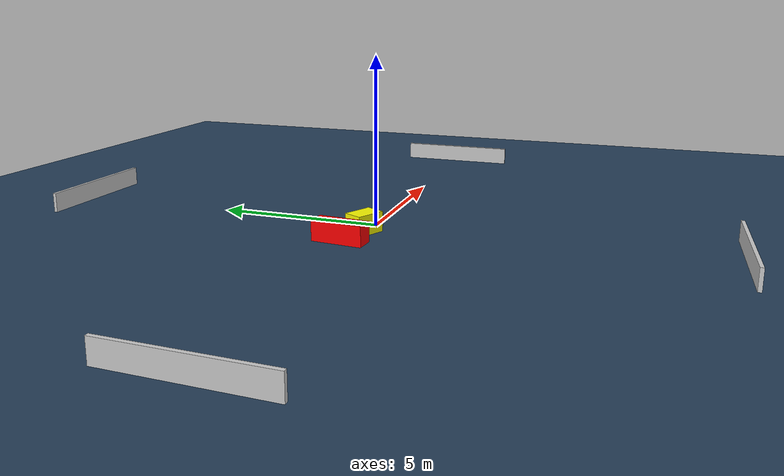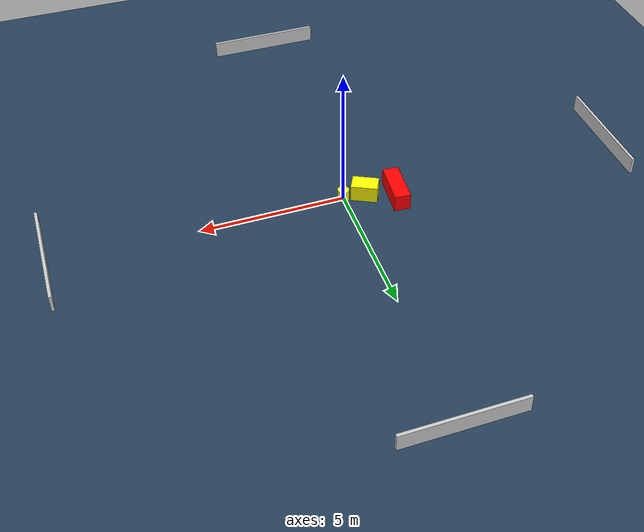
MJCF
<?xml version="1.0" ?>
<mujoco model="generated_environment">
  <option timestep="0.01" integrator="RK4" cone="elliptic"/>
  <default>
    <geom density="1"/>
  </default>
  <asset>
    <texture builtin="gradient" height="3072" name="skybox" rgb1="0.3 0.5 0.7" rgb2="0 0 0" type="skybox" width="512"/>
    <texture builtin="checker" height="300" name="groundplane" rgb1="0.2 0.3 0.4" rgb2="0.1 0.2 0.3" type="2d" width="300"/>
    <material name="groundplane" reflectance="0.2" texrepeat="5 5" texture="groundplane"/>
  </asset>
  <worldbody>
    <light dir="0 0 -1" directional="true" pos="0 0 1.5"/>
    <geom condim="3" friction="0.5 0.005 0.001" material="groundplane" name="floor" pos="0 0 0" size="0 0 0.05" type="plane"/>
    <body name="walls">
      <geom name="wall_1" condim="4" pos="-10.0 0.0 0.3" rgba="0.800000011920929 0.800000011920929 0.800000011920929 1.0" size="0.05 2.0 0.3" type="box"/>
      <geom name="wall_2" condim="4" pos="10.0 0.0 0.3" rgba="0.800000011920929 0.800000011920929 0.800000011920929 1.0" size="0.05 2.0 0.3" type="box"/>
      <geom name="wall_3" condim="4" pos="0.0 -10.0 0.3" rgba="0.800000011920929 0.800000011920929 0.800000011920929 1.0" size="2.0 0.05 0.3" type="box"/>
      <geom name="wall_4" condim="4" pos="0.0 10.0 0.3" rgba="0.800000011920929 0.800000011920929 0.800000011920929 1.0" size="2.0 0.05 0.3" type="box"/>
    </body>
    <body name="robot">
      <joint name="joint_x" type="slide" pos="0 0 0" axis="1 0 0"/>
      <joint name="joint_y" type="slide" pos="0 0 0" axis="0 1 0"/>
      <geom name="robot" type="cylinder" pos="0.0 0.0 0.2" size="0.2 0.2 0.0" mass="5.0" friction="1.0 0.005 0.0001" condim="4" rgba="1.0 1.0 0.0 1.0"/>
    </body>
    <body name="obstacle_1_movable">
      <geom name="obstacle_1_movable" condim="4" pos="-0.7375135475200274 0.10500523255253442 0.3" euler="0 0 333.4228893691254" friction="0.0 0.005 0.001" rgba="1.0 1.0 0.0 1.0" size="0.45169072213453354 0.29007256879604415 0.3" type="box" mass="0.1"/>
      <joint type="free"/>
    </body>
    <body name="obstacle_2_static">
      <geom name="obstacle_2_static" condim="4" pos="-1.7554371168372687 0.4346285817208897 0.3" euler="0 0 265.357949784332" friction="0.0 0.005 0.001" rgba="1.0 0.0 0.0 1.0" size="0.756303706946736 0.2778056997403805 0.3" type="box"/>
    </body>
  </worldbody>
  <actuator>
    <motor name="actuator_x" joint="joint_x" gear="1" ctrlrange="-1 1"/>
    <motor name="actuator_y" joint="joint_y" gear="1" ctrlrange="-1 1"/>
  </actuator>
</mujoco>
